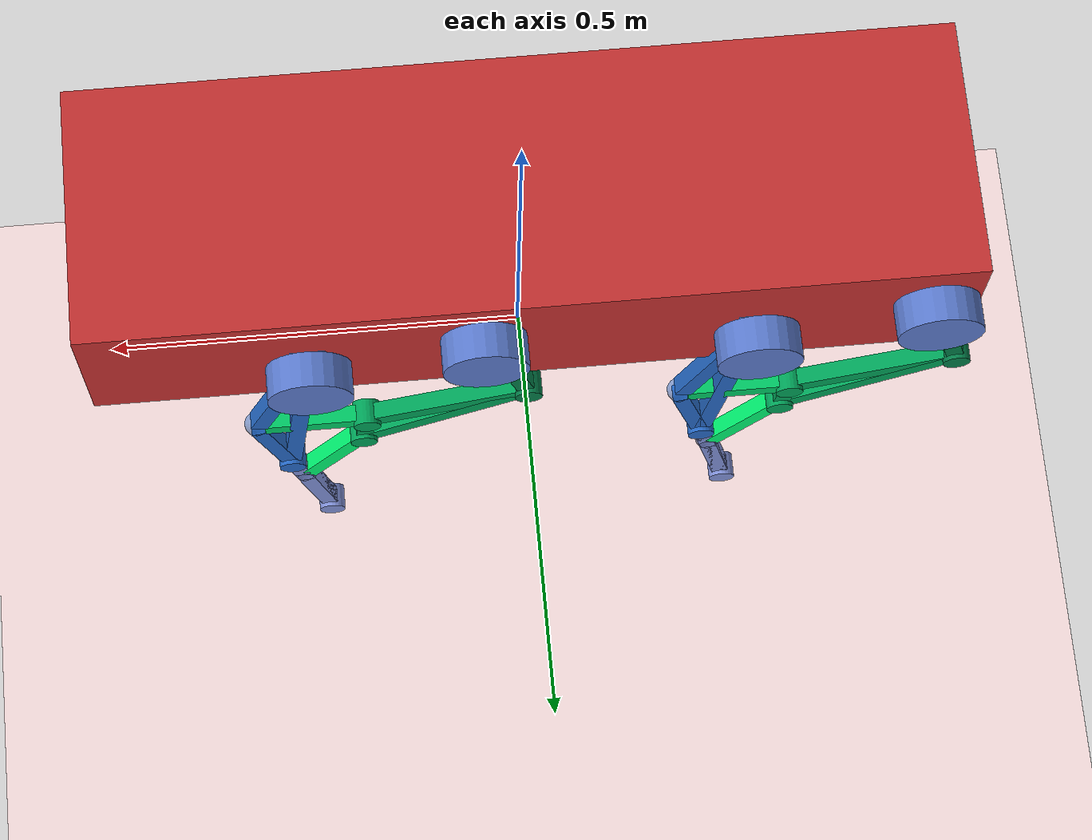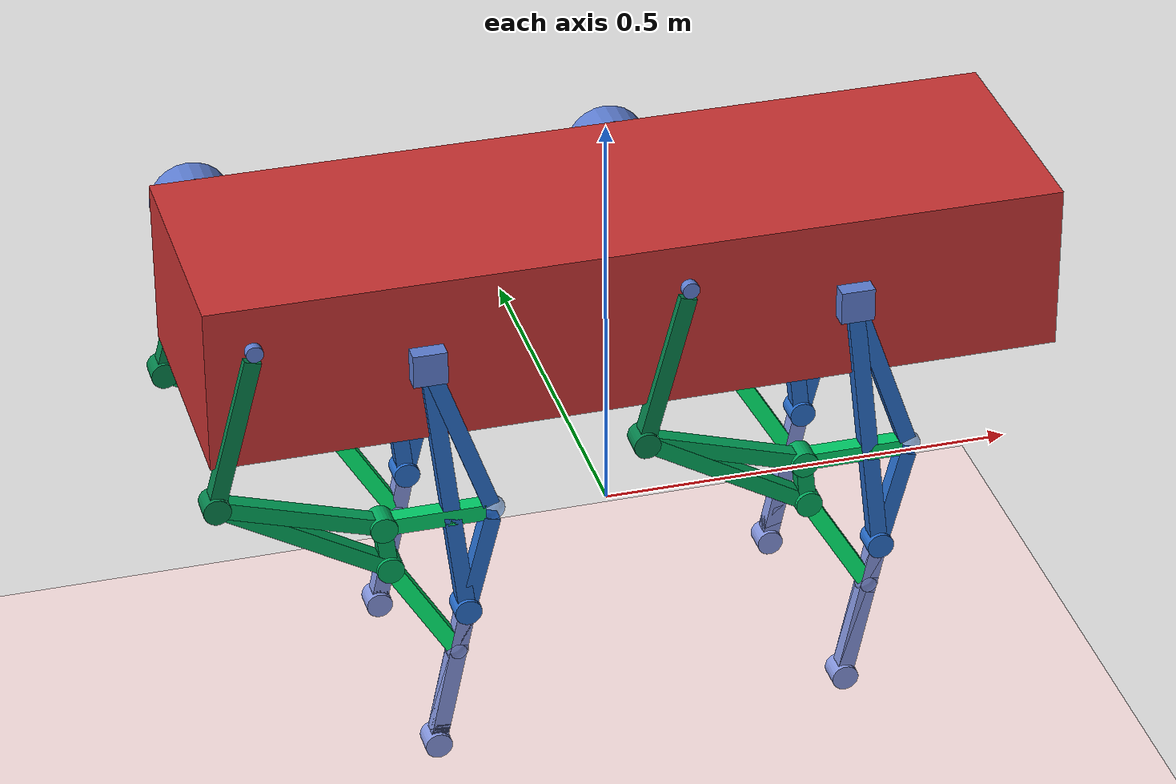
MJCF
<?xml version="1.0" encoding="utf-8"?>
<mujoco model="quadruped_torso">
  <compiler angle="radian" inertiafromgeom="true" coordinate="local" />
  <option timestep="0.01" gravity="0 0 -9.81" />
  <worldbody>
    <geom name="floor" type="plane" size="2 2 0.1" pos="0 0 -0.5" rgba="6 0.9 0.9 1" />
    <body name="torso" pos="0 0 0.32" quat="1 0 0 0">
      <geom name="torso_body" type="box" size="0.5 0.15 0.1" rgba="0.8 0.2 0.2 1" />
      <inertial pos="0 0 0" mass="2.0" diaginertia="0.1 0.2 0.1" />
      <body name="leg_front_right" pos="0.25 0.15 0">
        <geom name="G_vis0_front_right" type="box" rgba="0.37254901960784315 0.5019607843137255 0.8352941176470589 1.0" contype="1" conaffinity="1" pos="0.0 0.0 0.0" quat="1.0 0.0 0.0 0.0" size="0.02 0.02 0.02" />
        <inertial pos="0.0 0.0 0.0" mass="0.010434248887524934" diaginertia="2.782466370006649e-06 2.782466370006649e-06 2.782466370006649e-06" />
        <body name="L6_front_right" pos="0.0 0.0 0.0" quat="0.05740672490601135 5.76162120280019e-17 0.9983508741597643 5.76162120280019e-17">
          <joint name="Main_ground_front_right" type="hinge" axis="0 1 0" range="-3.141592653589793 3.141592653589793" damping="0.1" />
          <geom name="L6_vis0_front_right" type="box" rgba="0.1568627450980392 0.42745098039215684 0.8 1.0" contype="1" conaffinity="1" pos="8.008223628835724e-17 0.0 0.17012128026793125" quat="1.0 0.0 0.0 0.0" size="0.009999999776482582 0.009999999776482582 0.16012128049144866" />
          <geom name="L6_vis1_front_right" type="box" rgba="0.1568627450980392 0.42745098039215684 0.8 1.0" contype="1" conaffinity="1" pos="-0.024327343078314124 0.0 0.1071764065687967" quat="0.9937790602856788 0.0 -0.1113695619894114 0.0" size="0.009999999776482582 0.009999999776482582 0.09990269239368224" />
          <geom name="L6_vis2_front_right" type="box" rgba="0.1568627450980392 0.42745098039215684 0.8 1.0" contype="1" conaffinity="1" pos="-0.024327343078314044 0.0 0.27729768683672795" quat="0.18335811086497625 -4.896677205692733e-17 -0.9830461856800152 4.896677205692733e-17" size="0.009999999776482582 0.009999999776482582 0.05748241827629619" />
          <inertial pos="-0.01622 0.0 0.18487" mass="0.16173688658481772" diaginertia="0.02191345675655164 0.0223761845142554 0.0004735102163274033" />
          <body name="L7_front_right" pos="1.6016447257671449e-16 0.0 0.3402425605358625" quat="0.9867473260080689 0.0 0.1622643356253175 0.0">
            <joint name="Main_knee_front_right" type="hinge" axis="0 1 0" range="-3.141592653589793 3.141592653589793" damping="0.1" />
            <geom name="L7_vis0_front_right" type="box" rgba="0.5176470588235295 0.5843137254901961 0.8705882352941177 1.0" contype="1" conaffinity="1" pos="-6.938893903907228e-18 0.0 0.028385080257945366" quat="1.0 0.0 0.0 0.0" size="0.009999999776482582 0.009999999776482582 0.018385080481462784" />
            <geom name="L7_vis1_front_right" type="box" rgba="0.5176470588235295 0.5843137254901961 0.8705882352941177 1.0" contype="1" conaffinity="1" pos="-3.469446951953614e-17 0.0 0.12145091716924164" quat="1.0 0.0 0.0 0.0" size="0.009999999776482582 0.009999999776482582 0.054680756876868325" />
            <geom name="L7_vis2_front_right" type="box" rgba="0.5176470588235295 0.5843137254901961 0.8705882352941177 1.0" contype="1" conaffinity="1" pos="-2.7755575615628914e-17 0.0 0.09306583691129627" quat="1.0 0.0 0.0 0.0" size="0.009999999776482582 0.009999999776482582 0.08306583713481369" />
            <inertial pos="-0.0 0.0 0.08097" mass="0.04839422216852606" diaginertia="0.012721123994364246 0.012745589044769032 2.7691331737280837e-05" />
            <body name="EE_front_right" pos="-5.551115123125783e-17 0.0 0.18613167382259255" quat="0.10535080902060162 5.444071275446129e-17 0.9944351195722648 5.444071275446129e-17">
              <geom name="EE_vis0_front_right" type="sphere" rgba="0.6431372549019608 0.6666666666666666 0.9058823529411765 1.0" contype="1" conaffinity="1" pos="0.0 0.0 0.0" quat="1.0 0.0 0.0 0.0" size="0.002142857142857143" />
              <inertial pos="0.0 0.0 0.0" mass="2.6790549596939203e-05" diaginertia="4.920713191274548e-11 4.920713191274548e-11 4.920713191274548e-11" />
            </body>
            <body name="Main_ee_L7Unit_front_right" pos="-5.551115123125783e-17 0.0 0.18613167382259255" quat="0.07449427146195642 0.07449427146195635 0.7031718164996036 -0.7031718164996037">
              <geom name="Main_ee_L7Unit_vis0_front_right" type="cylinder" rgba="0.5176470588235295 0.5843137254901961 0.8705882352941177 0.9" contype="1" conaffinity="1" size="0.016 0.015" />
              <inertial pos="0 0 0" mass="0.1" diaginertia="0.00065 0.00065 0.0008" />
            </body>
            <body name="Main_connection_2_L7Pseudo_front_right" pos="0.0 0.0 0.05677016051589075" quat="0.930230301061354 0.0 -0.366976275782649 0.0">
              <geom name="Main_connection_2_L7Pseudo_vis0_front_right" type="sphere" rgba="0.5176470588235295 0.5843137254901961 0.8705882352941177 0.5" contype="1" conaffinity="1" size="0.01428571396640369" />
              <inertial pos="0 0 0" mass="0.05" diaginertia="4.08163247059803e-06 4.08163247059803e-06 4.08163247059803e-06" />
            </body>
          </body>
          <body name="Main_knee_L6Unit_front_right" pos="1.6016447257671449e-16 0.0 0.3402425605358625" quat="0.6977357255379986 0.6977357255379985 0.11473821206539198 -0.11473821206539196">
            <geom name="Main_knee_L6Unit_vis0_front_right" type="cylinder" rgba="0.1568627450980392 0.42745098039215684 0.8 0.9" contype="1" conaffinity="1" size="0.016 0.015" />
            <inertial pos="0 0 0" mass="0.1" diaginertia="0.00065 0.00065 0.0008" />
          </body>
          <body name="Main_connection_1_L6Pseudo_front_right" pos="-0.04865468615662824 0.0 0.2143528131375934" quat="0.746533357588638 0.0 -0.6653479886551358 0.0">
            <geom name="Main_connection_1_L6Pseudo_vis0_front_right" type="sphere" rgba="0.1568627450980392 0.42745098039215684 0.8 0.5" contype="1" conaffinity="1" size="0.01428571396640369" />
            <inertial pos="0 0 0" mass="0.05" diaginertia="4.08163247059803e-06 4.08163247059803e-06 4.08163247059803e-06" />
          </body>
        </body>
        <body name="Main_ground_GActuator_front_right" pos="0.0 0.029999999776482583 0.0" quat="0.040592684466751336 0.04059268446675125 0.7059406731218868 -0.7059406731218869">
          <geom name="Main_ground_GActuator_vis0_front_right" type="cylinder" rgba="0.37254901960784315 0.5019607843137255 0.8352941176470589 0.9" contype="1" conaffinity="1" size="0.048 0.02" />
          <inertial pos="0 0 0" mass="0.44" diaginertia="0.0067466666666666664 0.0067466666666666664 0.01056" />
        </body>
        <body name="Main_ground_GUnit_front_right" pos="0.0 0.0 0.0" quat="0.040592684466751336 0.04059268446675125 0.7059406731218868 -0.7059406731218869">
          <geom name="Main_ground_GUnit_vis0_front_right" type="cylinder" rgba="0.37254901960784315 0.5019607843137255 0.8352941176470589 0.9" contype="1" conaffinity="1" size="0.009999999776482582 0.009999999776482582" />
          <inertial pos="0 0 0" mass="0.1" diaginertia="0.00041666665735344094 0.00041666665735344094 0.0004999999888241291" />
        </body>
        <body name="L3_front_right" pos="-0.195 0.0 0.04680000000000001" quat="-0.12993279108591807 6.866935021292796e-17 0.9915228034698058 6.866935021292796e-17">
          <joint name="Ground_connection_front_right" type="hinge" axis="0 1 0" range="-3.141592653589793 3.141592653589793" damping="0.1" />
          <geom name="L3_vis0_front_right" type="box" rgba="0.01568627450980392 0.5058823529411764 0.29411764705882354 1.0" contype="1" conaffinity="1" pos="0.0 0.0 0.10091" quat="1.0 0.0 0.0 0.0" size="0.01 0.01 0.09090713552569016" />
          <inertial pos="0.0 0.0 0.10091" mass="0.04727171047335888" diaginertia="0.0001317952193855673 0.0001317952193855673 3.151447364890592e-06" />
          <body name="L4_front_right" pos="2.7755575615628914e-17 0.0 0.20181427105138033" quat="0.7961296417790595 0.0 -0.6051260971737595 0.0">
            <joint name="branch_0_front_right" type="hinge" axis="0 1 0" range="-3.141592653589793 3.141592653589793" damping="0.1" />
            <geom name="L4_vis0_front_right" type="box" rgba="0.0 0.6627450980392157 0.3607843137254902 1.0" contype="1" conaffinity="1" pos="-0.022628432928209194 0.0 0.21059178040871757" quat="0.44808742985417144 -2.7303641841988502e-17 -0.8939897399896057 2.7303641841988502e-17" size="0.009999999776482582 0.009999999776482582 0.018244194361428292" />
            <geom name="L4_vis1_front_right" type="box" rgba="0.0 0.6627450980392157 0.3607843137254902 1.0" contype="1" conaffinity="1" pos="0.0 0.0 0.1137470517475068" quat="1.0 0.0 0.0 0.0" size="0.009999999776482582 0.009999999776482582 0.10374705197102424" />
            <geom name="L4_vis2_front_right" type="box" rgba="0.0 0.6627450980392157 0.3607843137254902 1.0" contype="1" conaffinity="1" pos="-0.022628432928209194 0.0 0.09684472866121073" quat="0.11451756425717269 5.3817327657966684e-17 0.9934212235887677 5.3817327657966684e-17" size="0.009999999776482582 0.009999999776482582 0.08945324273601672" />
            <inertial pos="-0.01509 0.0 0.14039" mass="0.11082958592606866" diaginertia="0.012959578924386614 0.014870272115856353 0.001918081830201178" />
            <body name="L5_front_right" pos="-0.04525686585641839 0.0 0.1936894573224215" quat="0.9648892015411091 0.0 -0.26265724575834726 0.0">
              <joint name="branch_1_front_right" type="hinge" axis="0 1 0" range="-3.141592653589793 3.141592653589793" damping="0.1" />
              <geom name="L5_vis0_front_right" type="box" rgba="0.0 0.8274509803921568 0.4196078431372549 1.0" contype="1" conaffinity="1" pos="0.0 0.0 0.065" quat="1.0 0.0 0.0 0.0" size="0.01 0.01 0.055" />
              <inertial pos="0.0 0.0 0.065" mass="0.028600000000000004" diaginertia="2.9791666666666668e-05 2.9791666666666668e-05 1.9066666666666671e-06" />
              <body name="Main_connection_1_L5Pseudo_front_right" pos="2.7755575615628914e-17 0.0 0.13" quat="1.0 0.0 0.0 0.0">
                <joint name="Main_connection_1_L5_revolute_front_right" type="hinge" axis="0 1 0" range="-3.141592653589793 3.141592653589793" damping="0.1" />
                <geom name="Main_connection_1_L5Pseudo_vis0_front_right" type="sphere" rgba="0.0 0.8274509803921568 0.4196078431372549 0.5" contype="1" conaffinity="1" size="0.014285714285714287" />
                <inertial pos="0 0 0" mass="0.05" diaginertia="4.081632653061226e-06 4.081632653061226e-06 4.081632653061226e-06" />
              </body>
            </body>
            <body name="branch_1_L4Unit_front_right" pos="-0.04525686585641839 0.0 0.1936894573224215" quat="0.6822796975033918 0.6822796975033916 -0.18572671960350884 0.18572671960350878">
              <geom name="branch_1_L4Unit_vis0_front_right" type="cylinder" rgba="0.0 0.6627450980392157 0.3607843137254902 0.9" contype="1" conaffinity="1" size="0.016 0.015" />
              <inertial pos="0 0 0" mass="0.1" diaginertia="0.00065 0.00065 0.0008" />
            </body>
            <body name="L8_front_right" pos="0.0 0.0 0.22749410349501362" quat="0.9690574069405038 0.0 0.24683545542273044 0.0">
              <joint name="branch_2_front_right" type="hinge" axis="0 1 0" range="-3.141592653589793 3.141592653589793" damping="0.1" />
              <geom name="L8_vis0_front_right" type="box" rgba="0.0 1.0 0.4666666666666667 1.0" contype="1" conaffinity="1" pos="0.0 0.0 0.0758" quat="1.0 0.0 0.0 0.0" size="0.01 0.01 0.06580237463298892" />
              <inertial pos="0.0 0.0 0.0758" mass="0.03421723480915424" diaginertia="5.0526908379020675e-05 5.0526908379020675e-05 2.2811489872769493e-06" />
              <body name="Main_connection_2_L8Pseudo_front_right" pos="0.0 0.0 0.1516047492659778" quat="1.0 0.0 0.0 0.0">
                <joint name="Main_connection_2_L8_revolute_front_right" type="hinge" axis="0 1 0" range="-3.141592653589793 3.141592653589793" damping="0.1" />
                <geom name="Main_connection_2_L8Pseudo_vis0_front_right" type="sphere" rgba="0.0 1.0 0.4666666666666667 0.5" contype="1" conaffinity="1" size="0.014285714285714287" />
                <inertial pos="0 0 0" mass="0.05" diaginertia="4.081632653061226e-06 4.081632653061226e-06 4.081632653061226e-06" />
              </body>
            </body>
            <body name="branch_2_L4Unit_front_right" pos="0.0 0.0 0.22749410349501362" quat="0.6852270638066821 0.6852270638066817 0.17453902436668242 -0.1745390243666825">
              <geom name="branch_2_L4Unit_vis0_front_right" type="cylinder" rgba="0.0 0.6627450980392157 0.3607843137254902 0.9" contype="1" conaffinity="1" size="0.016 0.015" />
              <inertial pos="0 0 0" mass="0.1" diaginertia="0.00065 0.00065 0.0008" />
            </body>
          </body>
          <body name="branch_0_L3Unit_front_right" pos="2.7755575615628914e-17 0.0 0.20181427105138033" quat="0.56294866840559 0.5629486684055898 -0.4278887667845151 0.42788876678451504">
            <geom name="branch_0_L3Unit_vis0_front_right" type="cylinder" rgba="0.01568627450980392 0.5058823529411764 0.29411764705882354 0.9" contype="1" conaffinity="1" size="0.016 0.015" />
            <inertial pos="0 0 0" mass="0.1" diaginertia="0.00065 0.00065 0.0008" />
          </body>
        </body>
        <body name="Ground_connection_GActuator_front_right" pos="-0.195 0.03 0.04680000000000001" quat="0.09187635767534795 0.09187635767534752 -0.7011124980345963 0.701112498034596">
          <geom name="Ground_connection_GActuator_vis0_front_right" type="cylinder" rgba="0.37254901960784315 0.5019607843137255 0.8352941176470589 0.9" contype="1" conaffinity="1" size="0.048 0.02" />
          <inertial pos="0 0 0" mass="0.44" diaginertia="0.0067466666666666664 0.0067466666666666664 0.01056" />
        </body>
        <body name="Ground_connection_GUnit_front_right" pos="-0.195 0.0 0.04680000000000001" quat="0.09187635767534795 0.09187635767534752 -0.7011124980345963 0.701112498034596">
          <geom name="Ground_connection_GUnit_vis0_front_right" type="cylinder" rgba="0.37254901960784315 0.5019607843137255 0.8352941176470589 0.9" contype="1" conaffinity="1" size="0.01 0.01" />
          <inertial pos="0 0 0" mass="0.1" diaginertia="0.00041666666666666664 0.00041666666666666664 0.0005" />
        </body>
      </body>
      <body name="leg_front_left" pos="0.25 -0.15 0">
        <geom name="G_vis0_front_left" type="box" rgba="0.37254901960784315 0.5019607843137255 0.8352941176470589 1.0" contype="1" conaffinity="1" pos="0.0 0.0 0.0" quat="1.0 0.0 0.0 0.0" size="0.02 0.02 0.02" />
        <inertial pos="0.0 0.0 0.0" mass="0.010434248887524934" diaginertia="2.782466370006649e-06 2.782466370006649e-06 2.782466370006649e-06" />
        <body name="L6_front_left" pos="0.0 0.0 0.0" quat="0.05740672490601135 5.76162120280019e-17 0.9983508741597643 5.76162120280019e-17">
          <joint name="Main_ground_front_left" type="hinge" axis="0 1 0" range="-3.141592653589793 3.141592653589793" damping="0.1" />
          <geom name="L6_vis0_front_left" type="box" rgba="0.1568627450980392 0.42745098039215684 0.8 1.0" contype="1" conaffinity="1" pos="8.008223628835724e-17 0.0 0.17012128026793125" quat="1.0 0.0 0.0 0.0" size="0.009999999776482582 0.009999999776482582 0.16012128049144866" />
          <geom name="L6_vis1_front_left" type="box" rgba="0.1568627450980392 0.42745098039215684 0.8 1.0" contype="1" conaffinity="1" pos="-0.024327343078314124 0.0 0.1071764065687967" quat="0.9937790602856788 0.0 -0.1113695619894114 0.0" size="0.009999999776482582 0.009999999776482582 0.09990269239368224" />
          <geom name="L6_vis2_front_left" type="box" rgba="0.1568627450980392 0.42745098039215684 0.8 1.0" contype="1" conaffinity="1" pos="-0.024327343078314044 0.0 0.27729768683672795" quat="0.18335811086497625 -4.896677205692733e-17 -0.9830461856800152 4.896677205692733e-17" size="0.009999999776482582 0.009999999776482582 0.05748241827629619" />
          <inertial pos="-0.01622 0.0 0.18487" mass="0.16173688658481772" diaginertia="0.02191345675655164 0.0223761845142554 0.0004735102163274033" />
          <body name="L7_front_left" pos="1.6016447257671449e-16 0.0 0.3402425605358625" quat="0.9867473260080689 0.0 0.1622643356253175 0.0">
            <joint name="Main_knee_front_left" type="hinge" axis="0 1 0" range="-3.141592653589793 3.141592653589793" damping="0.1" />
            <geom name="L7_vis0_front_left" type="box" rgba="0.5176470588235295 0.5843137254901961 0.8705882352941177 1.0" contype="1" conaffinity="1" pos="-6.938893903907228e-18 0.0 0.028385080257945366" quat="1.0 0.0 0.0 0.0" size="0.009999999776482582 0.009999999776482582 0.018385080481462784" />
            <geom name="L7_vis1_front_left" type="box" rgba="0.5176470588235295 0.5843137254901961 0.8705882352941177 1.0" contype="1" conaffinity="1" pos="-3.469446951953614e-17 0.0 0.12145091716924164" quat="1.0 0.0 0.0 0.0" size="0.009999999776482582 0.009999999776482582 0.054680756876868325" />
            <geom name="L7_vis2_front_left" type="box" rgba="0.5176470588235295 0.5843137254901961 0.8705882352941177 1.0" contype="1" conaffinity="1" pos="-2.7755575615628914e-17 0.0 0.09306583691129627" quat="1.0 0.0 0.0 0.0" size="0.009999999776482582 0.009999999776482582 0.08306583713481369" />
            <inertial pos="-0.0 0.0 0.08097" mass="0.04839422216852606" diaginertia="0.012721123994364246 0.012745589044769032 2.7691331737280837e-05" />
            <body name="EE_front_left" pos="-5.551115123125783e-17 0.0 0.18613167382259255" quat="0.10535080902060162 5.444071275446129e-17 0.9944351195722648 5.444071275446129e-17">
              <geom name="EE_vis0_front_left" type="sphere" rgba="0.6431372549019608 0.6666666666666666 0.9058823529411765 1.0" contype="1" conaffinity="1" pos="0.0 0.0 0.0" quat="1.0 0.0 0.0 0.0" size="0.002142857142857143" />
              <inertial pos="0.0 0.0 0.0" mass="2.6790549596939203e-05" diaginertia="4.920713191274548e-11 4.920713191274548e-11 4.920713191274548e-11" />
            </body>
            <body name="Main_ee_L7Unit_front_left" pos="-5.551115123125783e-17 0.0 0.18613167382259255" quat="0.07449427146195642 0.07449427146195635 0.7031718164996036 -0.7031718164996037">
              <geom name="Main_ee_L7Unit_vis0_front_left" type="cylinder" rgba="0.5176470588235295 0.5843137254901961 0.8705882352941177 0.9" contype="1" conaffinity="1" size="0.016 0.015" />
              <inertial pos="0 0 0" mass="0.1" diaginertia="0.00065 0.00065 0.0008" />
            </body>
            <body name="Main_connection_2_L7Pseudo_front_left" pos="0.0 0.0 0.05677016051589075" quat="0.930230301061354 0.0 -0.366976275782649 0.0">
              <geom name="Main_connection_2_L7Pseudo_vis0_front_left" type="sphere" rgba="0.5176470588235295 0.5843137254901961 0.8705882352941177 0.5" contype="1" conaffinity="1" size="0.01428571396640369" />
              <inertial pos="0 0 0" mass="0.05" diaginertia="4.08163247059803e-06 4.08163247059803e-06 4.08163247059803e-06" />
            </body>
          </body>
          <body name="Main_knee_L6Unit_front_left" pos="1.6016447257671449e-16 0.0 0.3402425605358625" quat="0.6977357255379986 0.6977357255379985 0.11473821206539198 -0.11473821206539196">
            <geom name="Main_knee_L6Unit_vis0_front_left" type="cylinder" rgba="0.1568627450980392 0.42745098039215684 0.8 0.9" contype="1" conaffinity="1" size="0.016 0.015" />
            <inertial pos="0 0 0" mass="0.1" diaginertia="0.00065 0.00065 0.0008" />
          </body>
          <body name="Main_connection_1_L6Pseudo_front_left" pos="-0.04865468615662824 0.0 0.2143528131375934" quat="0.746533357588638 0.0 -0.6653479886551358 0.0">
            <geom name="Main_connection_1_L6Pseudo_vis0_front_left" type="sphere" rgba="0.1568627450980392 0.42745098039215684 0.8 0.5" contype="1" conaffinity="1" size="0.01428571396640369" />
            <inertial pos="0 0 0" mass="0.05" diaginertia="4.08163247059803e-06 4.08163247059803e-06 4.08163247059803e-06" />
          </body>
        </body>
        <body name="Main_ground_GActuator_front_left" pos="0.0 0.029999999776482583 0.0" quat="0.040592684466751336 0.04059268446675125 0.7059406731218868 -0.7059406731218869">
          <geom name="Main_ground_GActuator_vis0_front_left" type="cylinder" rgba="0.37254901960784315 0.5019607843137255 0.8352941176470589 0.9" contype="1" conaffinity="1" size="0.048 0.02" />
          <inertial pos="0 0 0" mass="0.44" diaginertia="0.0067466666666666664 0.0067466666666666664 0.01056" />
        </body>
        <body name="Main_ground_GUnit_front_left" pos="0.0 0.0 0.0" quat="0.040592684466751336 0.04059268446675125 0.7059406731218868 -0.7059406731218869">
          <geom name="Main_ground_GUnit_vis0_front_left" type="cylinder" rgba="0.37254901960784315 0.5019607843137255 0.8352941176470589 0.9" contype="1" conaffinity="1" size="0.009999999776482582 0.009999999776482582" />
          <inertial pos="0 0 0" mass="0.1" diaginertia="0.00041666665735344094 0.00041666665735344094 0.0004999999888241291" />
        </body>
        <body name="L3_front_left" pos="-0.195 0.0 0.04680000000000001" quat="-0.12993279108591807 6.866935021292796e-17 0.9915228034698058 6.866935021292796e-17">
          <joint name="Ground_connection_front_left" type="hinge" axis="0 1 0" range="-3.141592653589793 3.141592653589793" damping="0.1" />
          <geom name="L3_vis0_front_left" type="box" rgba="0.01568627450980392 0.5058823529411764 0.29411764705882354 1.0" contype="1" conaffinity="1" pos="0.0 0.0 0.10091" quat="1.0 0.0 0.0 0.0" size="0.01 0.01 0.09090713552569016" />
          <inertial pos="0.0 0.0 0.10091" mass="0.04727171047335888" diaginertia="0.0001317952193855673 0.0001317952193855673 3.151447364890592e-06" />
          <body name="L4_front_left" pos="2.7755575615628914e-17 0.0 0.20181427105138033" quat="0.7961296417790595 0.0 -0.6051260971737595 0.0">
            <joint name="branch_0_front_left" type="hinge" axis="0 1 0" range="-3.141592653589793 3.141592653589793" damping="0.1" />
            <geom name="L4_vis0_front_left" type="box" rgba="0.0 0.6627450980392157 0.3607843137254902 1.0" contype="1" conaffinity="1" pos="-0.022628432928209194 0.0 0.21059178040871757" quat="0.44808742985417144 -2.7303641841988502e-17 -0.8939897399896057 2.7303641841988502e-17" size="0.009999999776482582 0.009999999776482582 0.018244194361428292" />
            <geom name="L4_vis1_front_left" type="box" rgba="0.0 0.6627450980392157 0.3607843137254902 1.0" contype="1" conaffinity="1" pos="0.0 0.0 0.1137470517475068" quat="1.0 0.0 0.0 0.0" size="0.009999999776482582 0.009999999776482582 0.10374705197102424" />
            <geom name="L4_vis2_front_left" type="box" rgba="0.0 0.6627450980392157 0.3607843137254902 1.0" contype="1" conaffinity="1" pos="-0.022628432928209194 0.0 0.09684472866121073" quat="0.11451756425717269 5.3817327657966684e-17 0.9934212235887677 5.3817327657966684e-17" size="0.009999999776482582 0.009999999776482582 0.08945324273601672" />
            <inertial pos="-0.01509 0.0 0.14039" mass="0.11082958592606866" diaginertia="0.012959578924386614 0.014870272115856353 0.001918081830201178" />
            <body name="L5_front_left" pos="-0.04525686585641839 0.0 0.1936894573224215" quat="0.9648892015411091 0.0 -0.26265724575834726 0.0">
              <joint name="branch_1_front_left" type="hinge" axis="0 1 0" range="-3.141592653589793 3.141592653589793" damping="0.1" />
              <geom name="L5_vis0_front_left" type="box" rgba="0.0 0.8274509803921568 0.4196078431372549 1.0" contype="1" conaffinity="1" pos="0.0 0.0 0.065" quat="1.0 0.0 0.0 0.0" size="0.01 0.01 0.055" />
              <inertial pos="0.0 0.0 0.065" mass="0.028600000000000004" diaginertia="2.9791666666666668e-05 2.9791666666666668e-05 1.9066666666666671e-06" />
              <body name="Main_connection_1_L5Pseudo_front_left" pos="2.7755575615628914e-17 0.0 0.13" quat="1.0 0.0 0.0 0.0">
                <joint name="Main_connection_1_L5_revolute_front_left" type="hinge" axis="0 1 0" range="-3.141592653589793 3.141592653589793" damping="0.1" />
                <geom name="Main_connection_1_L5Pseudo_vis0_front_left" type="sphere" rgba="0.0 0.8274509803921568 0.4196078431372549 0.5" contype="1" conaffinity="1" size="0.014285714285714287" />
                <inertial pos="0 0 0" mass="0.05" diaginertia="4.081632653061226e-06 4.081632653061226e-06 4.081632653061226e-06" />
              </body>
            </body>
            <body name="branch_1_L4Unit_front_left" pos="-0.04525686585641839 0.0 0.1936894573224215" quat="0.6822796975033918 0.6822796975033916 -0.18572671960350884 0.18572671960350878">
              <geom name="branch_1_L4Unit_vis0_front_left" type="cylinder" rgba="0.0 0.6627450980392157 0.3607843137254902 0.9" contype="1" conaffinity="1" size="0.016 0.015" />
              <inertial pos="0 0 0" mass="0.1" diaginertia="0.00065 0.00065 0.0008" />
            </body>
            <body name="L8_front_left" pos="0.0 0.0 0.22749410349501362" quat="0.9690574069405038 0.0 0.24683545542273044 0.0">
              <joint name="branch_2_front_left" type="hinge" axis="0 1 0" range="-3.141592653589793 3.141592653589793" damping="0.1" />
              <geom name="L8_vis0_front_left" type="box" rgba="0.0 1.0 0.4666666666666667 1.0" contype="1" conaffinity="1" pos="0.0 0.0 0.0758" quat="1.0 0.0 0.0 0.0" size="0.01 0.01 0.06580237463298892" />
              <inertial pos="0.0 0.0 0.0758" mass="0.03421723480915424" diaginertia="5.0526908379020675e-05 5.0526908379020675e-05 2.2811489872769493e-06" />
              <body name="Main_connection_2_L8Pseudo_front_left" pos="0.0 0.0 0.1516047492659778" quat="1.0 0.0 0.0 0.0">
                <joint name="Main_connection_2_L8_revolute_front_left" type="hinge" axis="0 1 0" range="-3.141592653589793 3.141592653589793" damping="0.1" />
                <geom name="Main_connection_2_L8Pseudo_vis0_front_left" type="sphere" rgba="0.0 1.0 0.4666666666666667 0.5" contype="1" conaffinity="1" size="0.014285714285714287" />
                <inertial pos="0 0 0" mass="0.05" diaginertia="4.081632653061226e-06 4.081632653061226e-06 4.081632653061226e-06" />
              </body>
            </body>
            <body name="branch_2_L4Unit_front_left" pos="0.0 0.0 0.22749410349501362" quat="0.6852270638066821 0.6852270638066817 0.17453902436668242 -0.1745390243666825">
              <geom name="branch_2_L4Unit_vis0_front_left" type="cylinder" rgba="0.0 0.6627450980392157 0.3607843137254902 0.9" contype="1" conaffinity="1" size="0.016 0.015" />
              <inertial pos="0 0 0" mass="0.1" diaginertia="0.00065 0.00065 0.0008" />
            </body>
          </body>
          <body name="branch_0_L3Unit_front_left" pos="2.7755575615628914e-17 0.0 0.20181427105138033" quat="0.56294866840559 0.5629486684055898 -0.4278887667845151 0.42788876678451504">
            <geom name="branch_0_L3Unit_vis0_front_left" type="cylinder" rgba="0.01568627450980392 0.5058823529411764 0.29411764705882354 0.9" contype="1" conaffinity="1" size="0.016 0.015" />
            <inertial pos="0 0 0" mass="0.1" diaginertia="0.00065 0.00065 0.0008" />
          </body>
        </body>
        <body name="Ground_connection_GActuator_front_left" pos="-0.195 0.03 0.04680000000000001" quat="0.09187635767534795 0.09187635767534752 -0.7011124980345963 0.701112498034596">
          <geom name="Ground_connection_GActuator_vis0_front_left" type="cylinder" rgba="0.37254901960784315 0.5019607843137255 0.8352941176470589 0.9" contype="1" conaffinity="1" size="0.048 0.02" />
          <inertial pos="0 0 0" mass="0.44" diaginertia="0.0067466666666666664 0.0067466666666666664 0.01056" />
        </body>
        <body name="Ground_connection_GUnit_front_left" pos="-0.195 0.0 0.04680000000000001" quat="0.09187635767534795 0.09187635767534752 -0.7011124980345963 0.701112498034596">
          <geom name="Ground_connection_GUnit_vis0_front_left" type="cylinder" rgba="0.37254901960784315 0.5019607843137255 0.8352941176470589 0.9" contype="1" conaffinity="1" size="0.01 0.01" />
          <inertial pos="0 0 0" mass="0.1" diaginertia="0.00041666666666666664 0.00041666666666666664 0.0005" />
        </body>
      </body>
      <body name="leg_rear_right" pos="-0.25 0.15 0">
        <geom name="G_vis0_rear_right" type="box" rgba="0.37254901960784315 0.5019607843137255 0.8352941176470589 1.0" contype="1" conaffinity="1" pos="0.0 0.0 0.0" quat="1.0 0.0 0.0 0.0" size="0.02 0.02 0.02" />
        <inertial pos="0.0 0.0 0.0" mass="0.010434248887524934" diaginertia="2.782466370006649e-06 2.782466370006649e-06 2.782466370006649e-06" />
        <body name="L6_rear_right" pos="0.0 0.0 0.0" quat="0.05740672490601135 5.76162120280019e-17 0.9983508741597643 5.76162120280019e-17">
          <joint name="Main_ground_rear_right" type="hinge" axis="0 1 0" range="-3.141592653589793 3.141592653589793" damping="0.1" />
          <geom name="L6_vis0_rear_right" type="box" rgba="0.1568627450980392 0.42745098039215684 0.8 1.0" contype="1" conaffinity="1" pos="8.008223628835724e-17 0.0 0.17012128026793125" quat="1.0 0.0 0.0 0.0" size="0.009999999776482582 0.009999999776482582 0.16012128049144866" />
          <geom name="L6_vis1_rear_right" type="box" rgba="0.1568627450980392 0.42745098039215684 0.8 1.0" contype="1" conaffinity="1" pos="-0.024327343078314124 0.0 0.1071764065687967" quat="0.9937790602856788 0.0 -0.1113695619894114 0.0" size="0.009999999776482582 0.009999999776482582 0.09990269239368224" />
          <geom name="L6_vis2_rear_right" type="box" rgba="0.1568627450980392 0.42745098039215684 0.8 1.0" contype="1" conaffinity="1" pos="-0.024327343078314044 0.0 0.27729768683672795" quat="0.18335811086497625 -4.896677205692733e-17 -0.9830461856800152 4.896677205692733e-17" size="0.009999999776482582 0.009999999776482582 0.05748241827629619" />
          <inertial pos="-0.01622 0.0 0.18487" mass="0.16173688658481772" diaginertia="0.02191345675655164 0.0223761845142554 0.0004735102163274033" />
          <body name="L7_rear_right" pos="1.6016447257671449e-16 0.0 0.3402425605358625" quat="0.9867473260080689 0.0 0.1622643356253175 0.0">
            <joint name="Main_knee_rear_right" type="hinge" axis="0 1 0" range="-3.141592653589793 3.141592653589793" damping="0.1" />
            <geom name="L7_vis0_rear_right" type="box" rgba="0.5176470588235295 0.5843137254901961 0.8705882352941177 1.0" contype="1" conaffinity="1" pos="-6.938893903907228e-18 0.0 0.028385080257945366" quat="1.0 0.0 0.0 0.0" size="0.009999999776482582 0.009999999776482582 0.018385080481462784" />
            <geom name="L7_vis1_rear_right" type="box" rgba="0.5176470588235295 0.5843137254901961 0.8705882352941177 1.0" contype="1" conaffinity="1" pos="-3.469446951953614e-17 0.0 0.12145091716924164" quat="1.0 0.0 0.0 0.0" size="0.009999999776482582 0.009999999776482582 0.054680756876868325" />
            <geom name="L7_vis2_rear_right" type="box" rgba="0.5176470588235295 0.5843137254901961 0.8705882352941177 1.0" contype="1" conaffinity="1" pos="-2.7755575615628914e-17 0.0 0.09306583691129627" quat="1.0 0.0 0.0 0.0" size="0.009999999776482582 0.009999999776482582 0.08306583713481369" />
            <inertial pos="-0.0 0.0 0.08097" mass="0.04839422216852606" diaginertia="0.012721123994364246 0.012745589044769032 2.7691331737280837e-05" />
            <body name="EE_rear_right" pos="-5.551115123125783e-17 0.0 0.18613167382259255" quat="0.10535080902060162 5.444071275446129e-17 0.9944351195722648 5.444071275446129e-17">
              <geom name="EE_vis0_rear_right" type="sphere" rgba="0.6431372549019608 0.6666666666666666 0.9058823529411765 1.0" contype="1" conaffinity="1" pos="0.0 0.0 0.0" quat="1.0 0.0 0.0 0.0" size="0.002142857142857143" />
              <inertial pos="0.0 0.0 0.0" mass="2.6790549596939203e-05" diaginertia="4.920713191274548e-11 4.920713191274548e-11 4.920713191274548e-11" />
            </body>
            <body name="Main_ee_L7Unit_rear_right" pos="-5.551115123125783e-17 0.0 0.18613167382259255" quat="0.07449427146195642 0.07449427146195635 0.7031718164996036 -0.7031718164996037">
              <geom name="Main_ee_L7Unit_vis0_rear_right" type="cylinder" rgba="0.5176470588235295 0.5843137254901961 0.8705882352941177 0.9" contype="1" conaffinity="1" size="0.016 0.015" />
              <inertial pos="0 0 0" mass="0.1" diaginertia="0.00065 0.00065 0.0008" />
            </body>
            <body name="Main_connection_2_L7Pseudo_rear_right" pos="0.0 0.0 0.05677016051589075" quat="0.930230301061354 0.0 -0.366976275782649 0.0">
              <geom name="Main_connection_2_L7Pseudo_vis0_rear_right" type="sphere" rgba="0.5176470588235295 0.5843137254901961 0.8705882352941177 0.5" contype="1" conaffinity="1" size="0.01428571396640369" />
              <inertial pos="0 0 0" mass="0.05" diaginertia="4.08163247059803e-06 4.08163247059803e-06 4.08163247059803e-06" />
            </body>
          </body>
          <body name="Main_knee_L6Unit_rear_right" pos="1.6016447257671449e-16 0.0 0.3402425605358625" quat="0.6977357255379986 0.6977357255379985 0.11473821206539198 -0.11473821206539196">
            <geom name="Main_knee_L6Unit_vis0_rear_right" type="cylinder" rgba="0.1568627450980392 0.42745098039215684 0.8 0.9" contype="1" conaffinity="1" size="0.016 0.015" />
            <inertial pos="0 0 0" mass="0.1" diaginertia="0.00065 0.00065 0.0008" />
          </body>
          <body name="Main_connection_1_L6Pseudo_rear_right" pos="-0.04865468615662824 0.0 0.2143528131375934" quat="0.746533357588638 0.0 -0.6653479886551358 0.0">
            <geom name="Main_connection_1_L6Pseudo_vis0_rear_right" type="sphere" rgba="0.1568627450980392 0.42745098039215684 0.8 0.5" contype="1" conaffinity="1" size="0.01428571396640369" />
            <inertial pos="0 0 0" mass="0.05" diaginertia="4.08163247059803e-06 4.08163247059803e-06 4.08163247059803e-06" />
          </body>
        </body>
        <body name="Main_ground_GActuator_rear_right" pos="0.0 0.029999999776482583 0.0" quat="0.040592684466751336 0.04059268446675125 0.7059406731218868 -0.7059406731218869">
          <geom name="Main_ground_GActuator_vis0_rear_right" type="cylinder" rgba="0.37254901960784315 0.5019607843137255 0.8352941176470589 0.9" contype="1" conaffinity="1" size="0.048 0.02" />
          <inertial pos="0 0 0" mass="0.44" diaginertia="0.0067466666666666664 0.0067466666666666664 0.01056" />
        </body>
        <body name="Main_ground_GUnit_rear_right" pos="0.0 0.0 0.0" quat="0.040592684466751336 0.04059268446675125 0.7059406731218868 -0.7059406731218869">
          <geom name="Main_ground_GUnit_vis0_rear_right" type="cylinder" rgba="0.37254901960784315 0.5019607843137255 0.8352941176470589 0.9" contype="1" conaffinity="1" size="0.009999999776482582 0.009999999776482582" />
          <inertial pos="0 0 0" mass="0.1" diaginertia="0.00041666665735344094 0.00041666665735344094 0.0004999999888241291" />
        </body>
        <body name="L3_rear_right" pos="-0.195 0.0 0.04680000000000001" quat="-0.12993279108591807 6.866935021292796e-17 0.9915228034698058 6.866935021292796e-17">
          <joint name="Ground_connection_rear_right" type="hinge" axis="0 1 0" range="-3.141592653589793 3.141592653589793" damping="0.1" />
          <geom name="L3_vis0_rear_right" type="box" rgba="0.01568627450980392 0.5058823529411764 0.29411764705882354 1.0" contype="1" conaffinity="1" pos="0.0 0.0 0.10091" quat="1.0 0.0 0.0 0.0" size="0.01 0.01 0.09090713552569016" />
          <inertial pos="0.0 0.0 0.10091" mass="0.04727171047335888" diaginertia="0.0001317952193855673 0.0001317952193855673 3.151447364890592e-06" />
          <body name="L4_rear_right" pos="2.7755575615628914e-17 0.0 0.20181427105138033" quat="0.7961296417790595 0.0 -0.6051260971737595 0.0">
            <joint name="branch_0_rear_right" type="hinge" axis="0 1 0" range="-3.141592653589793 3.141592653589793" damping="0.1" />
            <geom name="L4_vis0_rear_right" type="box" rgba="0.0 0.6627450980392157 0.3607843137254902 1.0" contype="1" conaffinity="1" pos="-0.022628432928209194 0.0 0.21059178040871757" quat="0.44808742985417144 -2.7303641841988502e-17 -0.8939897399896057 2.7303641841988502e-17" size="0.009999999776482582 0.009999999776482582 0.018244194361428292" />
            <geom name="L4_vis1_rear_right" type="box" rgba="0.0 0.6627450980392157 0.3607843137254902 1.0" contype="1" conaffinity="1" pos="0.0 0.0 0.1137470517475068" quat="1.0 0.0 0.0 0.0" size="0.009999999776482582 0.009999999776482582 0.10374705197102424" />
            <geom name="L4_vis2_rear_right" type="box" rgba="0.0 0.6627450980392157 0.3607843137254902 1.0" contype="1" conaffinity="1" pos="-0.022628432928209194 0.0 0.09684472866121073" quat="0.11451756425717269 5.3817327657966684e-17 0.9934212235887677 5.3817327657966684e-17" size="0.009999999776482582 0.009999999776482582 0.08945324273601672" />
            <inertial pos="-0.01509 0.0 0.14039" mass="0.11082958592606866" diaginertia="0.012959578924386614 0.014870272115856353 0.001918081830201178" />
            <body name="L5_rear_right" pos="-0.04525686585641839 0.0 0.1936894573224215" quat="0.9648892015411091 0.0 -0.26265724575834726 0.0">
              <joint name="branch_1_rear_right" type="hinge" axis="0 1 0" range="-3.141592653589793 3.141592653589793" damping="0.1" />
              <geom name="L5_vis0_rear_right" type="box" rgba="0.0 0.8274509803921568 0.4196078431372549 1.0" contype="1" conaffinity="1" pos="0.0 0.0 0.065" quat="1.0 0.0 0.0 0.0" size="0.01 0.01 0.055" />
              <inertial pos="0.0 0.0 0.065" mass="0.028600000000000004" diaginertia="2.9791666666666668e-05 2.9791666666666668e-05 1.9066666666666671e-06" />
              <body name="Main_connection_1_L5Pseudo_rear_right" pos="2.7755575615628914e-17 0.0 0.13" quat="1.0 0.0 0.0 0.0">
                <joint name="Main_connection_1_L5_revolute_rear_right" type="hinge" axis="0 1 0" range="-3.141592653589793 3.141592653589793" damping="0.1" />
                <geom name="Main_connection_1_L5Pseudo_vis0_rear_right" type="sphere" rgba="0.0 0.8274509803921568 0.4196078431372549 0.5" contype="1" conaffinity="1" size="0.014285714285714287" />
                <inertial pos="0 0 0" mass="0.05" diaginertia="4.081632653061226e-06 4.081632653061226e-06 4.081632653061226e-06" />
              </body>
            </body>
            <body name="branch_1_L4Unit_rear_right" pos="-0.04525686585641839 0.0 0.1936894573224215" quat="0.6822796975033918 0.6822796975033916 -0.18572671960350884 0.18572671960350878">
              <geom name="branch_1_L4Unit_vis0_rear_right" type="cylinder" rgba="0.0 0.6627450980392157 0.3607843137254902 0.9" contype="1" conaffinity="1" size="0.016 0.015" />
              <inertial pos="0 0 0" mass="0.1" diaginertia="0.00065 0.00065 0.0008" />
            </body>
            <body name="L8_rear_right" pos="0.0 0.0 0.22749410349501362" quat="0.9690574069405038 0.0 0.24683545542273044 0.0">
              <joint name="branch_2_rear_right" type="hinge" axis="0 1 0" range="-3.141592653589793 3.141592653589793" damping="0.1" />
              <geom name="L8_vis0_rear_right" type="box" rgba="0.0 1.0 0.4666666666666667 1.0" contype="1" conaffinity="1" pos="0.0 0.0 0.0758" quat="1.0 0.0 0.0 0.0" size="0.01 0.01 0.06580237463298892" />
              <inertial pos="0.0 0.0 0.0758" mass="0.03421723480915424" diaginertia="5.0526908379020675e-05 5.0526908379020675e-05 2.2811489872769493e-06" />
              <body name="Main_connection_2_L8Pseudo_rear_right" pos="0.0 0.0 0.1516047492659778" quat="1.0 0.0 0.0 0.0">
                <joint name="Main_connection_2_L8_revolute_rear_right" type="hinge" axis="0 1 0" range="-3.141592653589793 3.141592653589793" damping="0.1" />
                <geom name="Main_connection_2_L8Pseudo_vis0_rear_right" type="sphere" rgba="0.0 1.0 0.4666666666666667 0.5" contype="1" conaffinity="1" size="0.014285714285714287" />
                <inertial pos="0 0 0" mass="0.05" diaginertia="4.081632653061226e-06 4.081632653061226e-06 4.081632653061226e-06" />
              </body>
            </body>
            <body name="branch_2_L4Unit_rear_right" pos="0.0 0.0 0.22749410349501362" quat="0.6852270638066821 0.6852270638066817 0.17453902436668242 -0.1745390243666825">
              <geom name="branch_2_L4Unit_vis0_rear_right" type="cylinder" rgba="0.0 0.6627450980392157 0.3607843137254902 0.9" contype="1" conaffinity="1" size="0.016 0.015" />
              <inertial pos="0 0 0" mass="0.1" diaginertia="0.00065 0.00065 0.0008" />
            </body>
          </body>
          <body name="branch_0_L3Unit_rear_right" pos="2.7755575615628914e-17 0.0 0.20181427105138033" quat="0.56294866840559 0.5629486684055898 -0.4278887667845151 0.42788876678451504">
            <geom name="branch_0_L3Unit_vis0_rear_right" type="cylinder" rgba="0.01568627450980392 0.5058823529411764 0.29411764705882354 0.9" contype="1" conaffinity="1" size="0.016 0.015" />
            <inertial pos="0 0 0" mass="0.1" diaginertia="0.00065 0.00065 0.0008" />
          </body>
        </body>
        <body name="Ground_connection_GActuator_rear_right" pos="-0.195 0.03 0.04680000000000001" quat="0.09187635767534795 0.09187635767534752 -0.7011124980345963 0.701112498034596">
          <geom name="Ground_connection_GActuator_vis0_rear_right" type="cylinder" rgba="0.37254901960784315 0.5019607843137255 0.8352941176470589 0.9" contype="1" conaffinity="1" size="0.048 0.02" />
          <inertial pos="0 0 0" mass="0.44" diaginertia="0.0067466666666666664 0.0067466666666666664 0.01056" />
        </body>
        <body name="Ground_connection_GUnit_rear_right" pos="-0.195 0.0 0.04680000000000001" quat="0.09187635767534795 0.09187635767534752 -0.7011124980345963 0.701112498034596">
          <geom name="Ground_connection_GUnit_vis0_rear_right" type="cylinder" rgba="0.37254901960784315 0.5019607843137255 0.8352941176470589 0.9" contype="1" conaffinity="1" size="0.01 0.01" />
          <inertial pos="0 0 0" mass="0.1" diaginertia="0.00041666666666666664 0.00041666666666666664 0.0005" />
        </body>
      </body>
      <body name="leg_rear_left" pos="-0.25 -0.15 0">
        <geom name="G_vis0_rear_left" type="box" rgba="0.37254901960784315 0.5019607843137255 0.8352941176470589 1.0" contype="1" conaffinity="1" pos="0.0 0.0 0.0" quat="1.0 0.0 0.0 0.0" size="0.02 0.02 0.02" />
        <inertial pos="0.0 0.0 0.0" mass="0.010434248887524934" diaginertia="2.782466370006649e-06 2.782466370006649e-06 2.782466370006649e-06" />
        <body name="L6_rear_left" pos="0.0 0.0 0.0" quat="0.05740672490601135 5.76162120280019e-17 0.9983508741597643 5.76162120280019e-17">
          <joint name="Main_ground_rear_left" type="hinge" axis="0 1 0" range="-3.141592653589793 3.141592653589793" damping="0.1" />
          <geom name="L6_vis0_rear_left" type="box" rgba="0.1568627450980392 0.42745098039215684 0.8 1.0" contype="1" conaffinity="1" pos="8.008223628835724e-17 0.0 0.17012128026793125" quat="1.0 0.0 0.0 0.0" size="0.009999999776482582 0.009999999776482582 0.16012128049144866" />
          <geom name="L6_vis1_rear_left" type="box" rgba="0.1568627450980392 0.42745098039215684 0.8 1.0" contype="1" conaffinity="1" pos="-0.024327343078314124 0.0 0.1071764065687967" quat="0.9937790602856788 0.0 -0.1113695619894114 0.0" size="0.009999999776482582 0.009999999776482582 0.09990269239368224" />
          <geom name="L6_vis2_rear_left" type="box" rgba="0.1568627450980392 0.42745098039215684 0.8 1.0" contype="1" conaffinity="1" pos="-0.024327343078314044 0.0 0.27729768683672795" quat="0.18335811086497625 -4.896677205692733e-17 -0.9830461856800152 4.896677205692733e-17" size="0.009999999776482582 0.009999999776482582 0.05748241827629619" />
          <inertial pos="-0.01622 0.0 0.18487" mass="0.16173688658481772" diaginertia="0.02191345675655164 0.0223761845142554 0.0004735102163274033" />
          <body name="L7_rear_left" pos="1.6016447257671449e-16 0.0 0.3402425605358625" quat="0.9867473260080689 0.0 0.1622643356253175 0.0">
            <joint name="Main_knee_rear_left" type="hinge" axis="0 1 0" range="-3.141592653589793 3.141592653589793" damping="0.1" />
            <geom name="L7_vis0_rear_left" type="box" rgba="0.5176470588235295 0.5843137254901961 0.8705882352941177 1.0" contype="1" conaffinity="1" pos="-6.938893903907228e-18 0.0 0.028385080257945366" quat="1.0 0.0 0.0 0.0" size="0.009999999776482582 0.009999999776482582 0.018385080481462784" />
            <geom name="L7_vis1_rear_left" type="box" rgba="0.5176470588235295 0.5843137254901961 0.8705882352941177 1.0" contype="1" conaffinity="1" pos="-3.469446951953614e-17 0.0 0.12145091716924164" quat="1.0 0.0 0.0 0.0" size="0.009999999776482582 0.009999999776482582 0.054680756876868325" />
            <geom name="L7_vis2_rear_left" type="box" rgba="0.5176470588235295 0.5843137254901961 0.8705882352941177 1.0" contype="1" conaffinity="1" pos="-2.7755575615628914e-17 0.0 0.09306583691129627" quat="1.0 0.0 0.0 0.0" size="0.009999999776482582 0.009999999776482582 0.08306583713481369" />
            <inertial pos="-0.0 0.0 0.08097" mass="0.04839422216852606" diaginertia="0.012721123994364246 0.012745589044769032 2.7691331737280837e-05" />
            <body name="EE_rear_left" pos="-5.551115123125783e-17 0.0 0.18613167382259255" quat="0.10535080902060162 5.444071275446129e-17 0.9944351195722648 5.444071275446129e-17">
              <geom name="EE_vis0_rear_left" type="sphere" rgba="0.6431372549019608 0.6666666666666666 0.9058823529411765 1.0" contype="1" conaffinity="1" pos="0.0 0.0 0.0" quat="1.0 0.0 0.0 0.0" size="0.002142857142857143" />
              <inertial pos="0.0 0.0 0.0" mass="2.6790549596939203e-05" diaginertia="4.920713191274548e-11 4.920713191274548e-11 4.920713191274548e-11" />
            </body>
            <body name="Main_ee_L7Unit_rear_left" pos="-5.551115123125783e-17 0.0 0.18613167382259255" quat="0.07449427146195642 0.07449427146195635 0.7031718164996036 -0.7031718164996037">
              <geom name="Main_ee_L7Unit_vis0_rear_left" type="cylinder" rgba="0.5176470588235295 0.5843137254901961 0.8705882352941177 0.9" contype="1" conaffinity="1" size="0.016 0.015" />
              <inertial pos="0 0 0" mass="0.1" diaginertia="0.00065 0.00065 0.0008" />
            </body>
            <body name="Main_connection_2_L7Pseudo_rear_left" pos="0.0 0.0 0.05677016051589075" quat="0.930230301061354 0.0 -0.366976275782649 0.0">
              <geom name="Main_connection_2_L7Pseudo_vis0_rear_left" type="sphere" rgba="0.5176470588235295 0.5843137254901961 0.8705882352941177 0.5" contype="1" conaffinity="1" size="0.01428571396640369" />
              <inertial pos="0 0 0" mass="0.05" diaginertia="4.08163247059803e-06 4.08163247059803e-06 4.08163247059803e-06" />
            </body>
          </body>
          <body name="Main_knee_L6Unit_rear_left" pos="1.6016447257671449e-16 0.0 0.3402425605358625" quat="0.6977357255379986 0.6977357255379985 0.11473821206539198 -0.11473821206539196">
            <geom name="Main_knee_L6Unit_vis0_rear_left" type="cylinder" rgba="0.1568627450980392 0.42745098039215684 0.8 0.9" contype="1" conaffinity="1" size="0.016 0.015" />
            <inertial pos="0 0 0" mass="0.1" diaginertia="0.00065 0.00065 0.0008" />
          </body>
          <body name="Main_connection_1_L6Pseudo_rear_left" pos="-0.04865468615662824 0.0 0.2143528131375934" quat="0.746533357588638 0.0 -0.6653479886551358 0.0">
            <geom name="Main_connection_1_L6Pseudo_vis0_rear_left" type="sphere" rgba="0.1568627450980392 0.42745098039215684 0.8 0.5" contype="1" conaffinity="1" size="0.01428571396640369" />
            <inertial pos="0 0 0" mass="0.05" diaginertia="4.08163247059803e-06 4.08163247059803e-06 4.08163247059803e-06" />
          </body>
        </body>
        <body name="Main_ground_GActuator_rear_left" pos="0.0 0.029999999776482583 0.0" quat="0.040592684466751336 0.04059268446675125 0.7059406731218868 -0.7059406731218869">
          <geom name="Main_ground_GActuator_vis0_rear_left" type="cylinder" rgba="0.37254901960784315 0.5019607843137255 0.8352941176470589 0.9" contype="1" conaffinity="1" size="0.048 0.02" />
          <inertial pos="0 0 0" mass="0.44" diaginertia="0.0067466666666666664 0.0067466666666666664 0.01056" />
        </body>
        <body name="Main_ground_GUnit_rear_left" pos="0.0 0.0 0.0" quat="0.040592684466751336 0.04059268446675125 0.7059406731218868 -0.7059406731218869">
          <geom name="Main_ground_GUnit_vis0_rear_left" type="cylinder" rgba="0.37254901960784315 0.5019607843137255 0.8352941176470589 0.9" contype="1" conaffinity="1" size="0.009999999776482582 0.009999999776482582" />
          <inertial pos="0 0 0" mass="0.1" diaginertia="0.00041666665735344094 0.00041666665735344094 0.0004999999888241291" />
        </body>
        <body name="L3_rear_left" pos="-0.195 0.0 0.04680000000000001" quat="-0.12993279108591807 6.866935021292796e-17 0.9915228034698058 6.866935021292796e-17">
          <joint name="Ground_connection_rear_left" type="hinge" axis="0 1 0" range="-3.141592653589793 3.141592653589793" damping="0.1" />
          <geom name="L3_vis0_rear_left" type="box" rgba="0.01568627450980392 0.5058823529411764 0.29411764705882354 1.0" contype="1" conaffinity="1" pos="0.0 0.0 0.10091" quat="1.0 0.0 0.0 0.0" size="0.01 0.01 0.09090713552569016" />
          <inertial pos="0.0 0.0 0.10091" mass="0.04727171047335888" diaginertia="0.0001317952193855673 0.0001317952193855673 3.151447364890592e-06" />
          <body name="L4_rear_left" pos="2.7755575615628914e-17 0.0 0.20181427105138033" quat="0.7961296417790595 0.0 -0.6051260971737595 0.0">
            <joint name="branch_0_rear_left" type="hinge" axis="0 1 0" range="-3.141592653589793 3.141592653589793" damping="0.1" />
            <geom name="L4_vis0_rear_left" type="box" rgba="0.0 0.6627450980392157 0.3607843137254902 1.0" contype="1" conaffinity="1" pos="-0.022628432928209194 0.0 0.21059178040871757" quat="0.44808742985417144 -2.7303641841988502e-17 -0.8939897399896057 2.7303641841988502e-17" size="0.009999999776482582 0.009999999776482582 0.018244194361428292" />
            <geom name="L4_vis1_rear_left" type="box" rgba="0.0 0.6627450980392157 0.3607843137254902 1.0" contype="1" conaffinity="1" pos="0.0 0.0 0.1137470517475068" quat="1.0 0.0 0.0 0.0" size="0.009999999776482582 0.009999999776482582 0.10374705197102424" />
            <geom name="L4_vis2_rear_left" type="box" rgba="0.0 0.6627450980392157 0.3607843137254902 1.0" contype="1" conaffinity="1" pos="-0.022628432928209194 0.0 0.09684472866121073" quat="0.11451756425717269 5.3817327657966684e-17 0.9934212235887677 5.3817327657966684e-17" size="0.009999999776482582 0.009999999776482582 0.08945324273601672" />
            <inertial pos="-0.01509 0.0 0.14039" mass="0.11082958592606866" diaginertia="0.012959578924386614 0.014870272115856353 0.001918081830201178" />
            <body name="L5_rear_left" pos="-0.04525686585641839 0.0 0.1936894573224215" quat="0.9648892015411091 0.0 -0.26265724575834726 0.0">
              <joint name="branch_1_rear_left" type="hinge" axis="0 1 0" range="-3.141592653589793 3.141592653589793" damping="0.1" />
              <geom name="L5_vis0_rear_left" type="box" rgba="0.0 0.8274509803921568 0.4196078431372549 1.0" contype="1" conaffinity="1" pos="0.0 0.0 0.065" quat="1.0 0.0 0.0 0.0" size="0.01 0.01 0.055" />
              <inertial pos="0.0 0.0 0.065" mass="0.028600000000000004" diaginertia="2.9791666666666668e-05 2.9791666666666668e-05 1.9066666666666671e-06" />
              <body name="Main_connection_1_L5Pseudo_rear_left" pos="2.7755575615628914e-17 0.0 0.13" quat="1.0 0.0 0.0 0.0">
                <joint name="Main_connection_1_L5_revolute_rear_left" type="hinge" axis="0 1 0" range="-3.141592653589793 3.141592653589793" damping="0.1" />
                <geom name="Main_connection_1_L5Pseudo_vis0_rear_left" type="sphere" rgba="0.0 0.8274509803921568 0.4196078431372549 0.5" contype="1" conaffinity="1" size="0.014285714285714287" />
                <inertial pos="0 0 0" mass="0.05" diaginertia="4.081632653061226e-06 4.081632653061226e-06 4.081632653061226e-06" />
              </body>
            </body>
            <body name="branch_1_L4Unit_rear_left" pos="-0.04525686585641839 0.0 0.1936894573224215" quat="0.6822796975033918 0.6822796975033916 -0.18572671960350884 0.18572671960350878">
              <geom name="branch_1_L4Unit_vis0_rear_left" type="cylinder" rgba="0.0 0.6627450980392157 0.3607843137254902 0.9" contype="1" conaffinity="1" size="0.016 0.015" />
              <inertial pos="0 0 0" mass="0.1" diaginertia="0.00065 0.00065 0.0008" />
            </body>
            <body name="L8_rear_left" pos="0.0 0.0 0.22749410349501362" quat="0.9690574069405038 0.0 0.24683545542273044 0.0">
              <joint name="branch_2_rear_left" type="hinge" axis="0 1 0" range="-3.141592653589793 3.141592653589793" damping="0.1" />
              <geom name="L8_vis0_rear_left" type="box" rgba="0.0 1.0 0.4666666666666667 1.0" contype="1" conaffinity="1" pos="0.0 0.0 0.0758" quat="1.0 0.0 0.0 0.0" size="0.01 0.01 0.06580237463298892" />
              <inertial pos="0.0 0.0 0.0758" mass="0.03421723480915424" diaginertia="5.0526908379020675e-05 5.0526908379020675e-05 2.2811489872769493e-06" />
              <body name="Main_connection_2_L8Pseudo_rear_left" pos="0.0 0.0 0.1516047492659778" quat="1.0 0.0 0.0 0.0">
                <joint name="Main_connection_2_L8_revolute_rear_left" type="hinge" axis="0 1 0" range="-3.141592653589793 3.141592653589793" damping="0.1" />
                <geom name="Main_connection_2_L8Pseudo_vis0_rear_left" type="sphere" rgba="0.0 1.0 0.4666666666666667 0.5" contype="1" conaffinity="1" size="0.014285714285714287" />
                <inertial pos="0 0 0" mass="0.05" diaginertia="4.081632653061226e-06 4.081632653061226e-06 4.081632653061226e-06" />
              </body>
            </body>
            <body name="branch_2_L4Unit_rear_left" pos="0.0 0.0 0.22749410349501362" quat="0.6852270638066821 0.6852270638066817 0.17453902436668242 -0.1745390243666825">
              <geom name="branch_2_L4Unit_vis0_rear_left" type="cylinder" rgba="0.0 0.6627450980392157 0.3607843137254902 0.9" contype="1" conaffinity="1" size="0.016 0.015" />
              <inertial pos="0 0 0" mass="0.1" diaginertia="0.00065 0.00065 0.0008" />
            </body>
          </body>
          <body name="branch_0_L3Unit_rear_left" pos="2.7755575615628914e-17 0.0 0.20181427105138033" quat="0.56294866840559 0.5629486684055898 -0.4278887667845151 0.42788876678451504">
            <geom name="branch_0_L3Unit_vis0_rear_left" type="cylinder" rgba="0.01568627450980392 0.5058823529411764 0.29411764705882354 0.9" contype="1" conaffinity="1" size="0.016 0.015" />
            <inertial pos="0 0 0" mass="0.1" diaginertia="0.00065 0.00065 0.0008" />
          </body>
        </body>
        <body name="Ground_connection_GActuator_rear_left" pos="-0.195 0.03 0.04680000000000001" quat="0.09187635767534795 0.09187635767534752 -0.7011124980345963 0.701112498034596">
          <geom name="Ground_connection_GActuator_vis0_rear_left" type="cylinder" rgba="0.37254901960784315 0.5019607843137255 0.8352941176470589 0.9" contype="1" conaffinity="1" size="0.048 0.02" />
          <inertial pos="0 0 0" mass="0.44" diaginertia="0.0067466666666666664 0.0067466666666666664 0.01056" />
        </body>
        <body name="Ground_connection_GUnit_rear_left" pos="-0.195 0.0 0.04680000000000001" quat="0.09187635767534795 0.09187635767534752 -0.7011124980345963 0.701112498034596">
          <geom name="Ground_connection_GUnit_vis0_rear_left" type="cylinder" rgba="0.37254901960784315 0.5019607843137255 0.8352941176470589 0.9" contype="1" conaffinity="1" size="0.01 0.01" />
          <inertial pos="0 0 0" mass="0.1" diaginertia="0.00041666666666666664 0.00041666666666666664 0.0005" />
        </body>
      </body>
    </body>
  </worldbody>
  <actuator>
    <motor name="Main_ground_motor_front_right" joint="Main_ground_front_right" gear="80" ctrlrange="-1.0 1.0" forcerange="-20 20" />
    <motor name="Ground_connection_motor_front_right" joint="Ground_connection_front_right" gear="80" ctrlrange="-1.0 1.0" forcerange="-20 20" />
    <motor name="Main_ground_motor_front_left" joint="Main_ground_front_left" gear="80" ctrlrange="-1.0 1.0" forcerange="-20 20" />
    <motor name="Ground_connection_motor_front_left" joint="Ground_connection_front_left" gear="80" ctrlrange="-1.0 1.0" forcerange="-20 20" />
    <motor name="Main_ground_motor_rear_right" joint="Main_ground_rear_right" gear="80" ctrlrange="-1.0 1.0" forcerange="-20 20" />
    <motor name="Ground_connection_motor_rear_right" joint="Ground_connection_rear_right" gear="80" ctrlrange="-1.0 1.0" forcerange="-20 20" />
    <motor name="Main_ground_motor_rear_left" joint="Main_ground_rear_left" gear="80" ctrlrange="-1.0 1.0" forcerange="-20 20" />
    <motor name="Ground_connection_motor_rear_left" joint="Ground_connection_rear_left" gear="80" ctrlrange="-1.0 1.0" forcerange="-20 20" />
  </actuator>
  <equality>
    <connect name="connect_Main_connection_1_L5Pseudo_to_Main_connection_1_L6Pseudo_front_right" body1="Main_connection_1_L5Pseudo_front_right" body2="Main_connection_1_L6Pseudo_front_right" anchor="0 0 0" solref="0.01 1" />
    <connect name="connect_Main_connection_2_L8Pseudo_to_Main_connection_2_L7Pseudo_front_right" body1="Main_connection_2_L8Pseudo_front_right" body2="Main_connection_2_L7Pseudo_front_right" anchor="0 0 0" solref="0.01 1" />
    <connect name="connect_Main_connection_1_L5Pseudo_to_Main_connection_1_L6Pseudo_front_left" body1="Main_connection_1_L5Pseudo_front_left" body2="Main_connection_1_L6Pseudo_front_left" anchor="0 0 0" solref="0.01 1" />
    <connect name="connect_Main_connection_2_L8Pseudo_to_Main_connection_2_L7Pseudo_front_left" body1="Main_connection_2_L8Pseudo_front_left" body2="Main_connection_2_L7Pseudo_front_left" anchor="0 0 0" solref="0.01 1" />
    <connect name="connect_Main_connection_1_L5Pseudo_to_Main_connection_1_L6Pseudo_rear_right" body1="Main_connection_1_L5Pseudo_rear_right" body2="Main_connection_1_L6Pseudo_rear_right" anchor="0 0 0" solref="0.01 1" />
    <connect name="connect_Main_connection_2_L8Pseudo_to_Main_connection_2_L7Pseudo_rear_right" body1="Main_connection_2_L8Pseudo_rear_right" body2="Main_connection_2_L7Pseudo_rear_right" anchor="0 0 0" solref="0.01 1" />
    <connect name="connect_Main_connection_1_L5Pseudo_to_Main_connection_1_L6Pseudo_rear_left" body1="Main_connection_1_L5Pseudo_rear_left" body2="Main_connection_1_L6Pseudo_rear_left" anchor="0 0 0" solref="0.01 1" />
    <connect name="connect_Main_connection_2_L8Pseudo_to_Main_connection_2_L7Pseudo_rear_left" body1="Main_connection_2_L8Pseudo_rear_left" body2="Main_connection_2_L7Pseudo_rear_left" anchor="0 0 0" solref="0.01 1" />
  </equality>
</mujoco>
